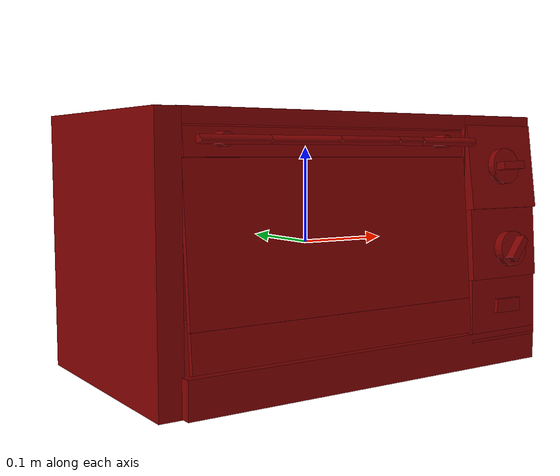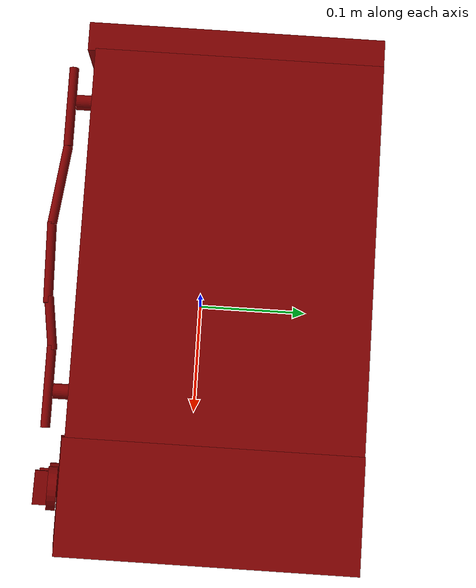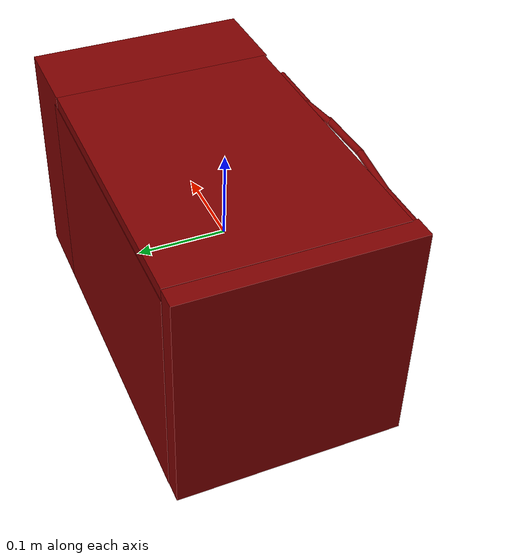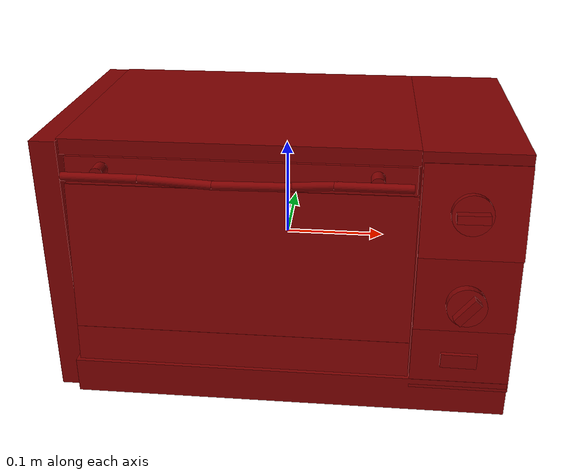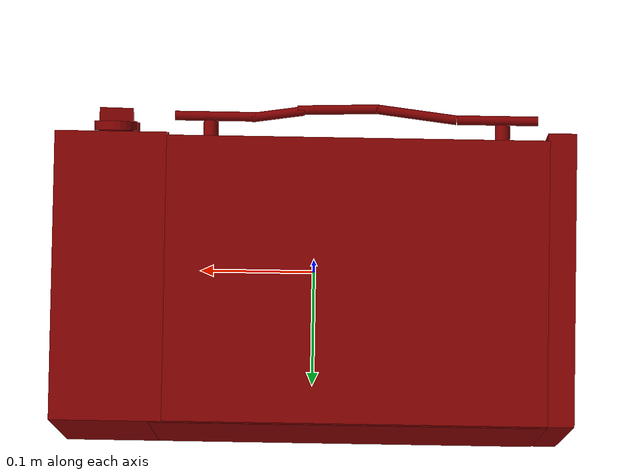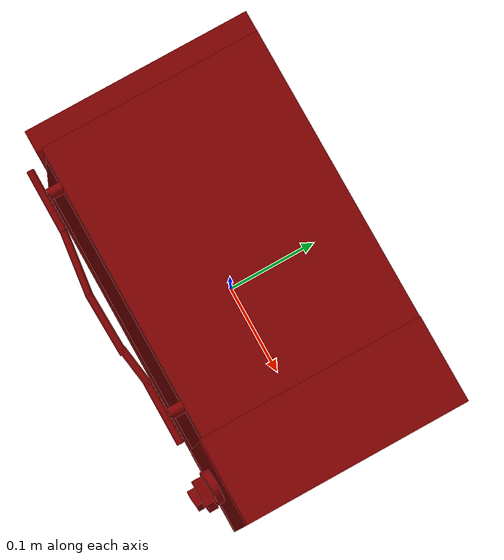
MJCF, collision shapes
<?xml version='1.0' encoding='UTF-8'?>
<mujoco model="model">
  <compiler angle="radian"/>
  <asset>
    <mesh file="visuals/Body001.obj" name="Body001_vis"/>
    <mesh file="visuals/Button001.obj" name="Button001_vis"/>
    <mesh file="visuals/Door001.obj" name="Door001_vis"/>
    <mesh file="visuals/Door001_Clear.obj" name="Door001_Clear_vis"/>
    <mesh file="visuals/Knob001.obj" name="Knob001_vis"/>
    <mesh file="visuals/Knob002.obj" name="Knob002_vis"/>
    <mesh file="visuals/Shelf001.obj" name="Shelf001_vis"/>
    <texture file="visuals/T_BC001.png" name="Body001_material" type="2d"/>
    <material name="Body001_material" rgba="1 1 1 1.0" texture="Body001_material" shininess="0.141421377658844" specular="0.7"/>
    <texture file="visuals/T_BC001.png" name="Button001_material" type="2d"/>
    <material name="Button001_material" rgba="1 1 1 1.0" texture="Button001_material" shininess="0.141421377658844" specular="0.3103448502657381"/>
    <texture file="visuals/T_BC001.png" name="Door001_material" type="2d"/>
    <material name="Door001_material" rgba="1 1 1 1.0" texture="Door001_material" shininess="0.141421377658844" specular="0.3103448502657381"/>
    <texture file="visuals/T_BC001.png" name="Door001_Clear_material" type="2d"/>
    <material name="Door001_Clear_material" rgba="1 1 1 0.800000011920929" texture="Door001_Clear_material" shininess="0.5" specular="0.3103448502657381"/>
    <texture file="visuals/T_BC001.png" name="Knob001_material" type="2d"/>
    <material name="Knob001_material" rgba="1 1 1 1.0" texture="Knob001_material" shininess="0.141421377658844" specular="0.3103448502657381"/>
    <texture file="visuals/T_BC001.png" name="Knob002_material" type="2d"/>
    <material name="Knob002_material" rgba="1 1 1 1.0" texture="Knob002_material" shininess="0.141421377658844" specular="0.3103448502657381"/>
    <texture file="visuals/T_BC001.png" name="Shelf001_material" type="2d"/>
    <material name="Shelf001_material" rgba="1 1 1 1.0" texture="Shelf001_material" shininess="0.141421377658844" specular="0.3103448502657381"/>
  </asset>
  <default>
    <default class="visual">
      <geom conaffinity="0" contype="0" group="1" type="mesh"/>
    </default>
    <default class="collision">
      <geom group="0" rgba="0.5 0 0 0.5"/>
    </default>
    <default class="spawn">
      <geom group="0" rgba="1 1 1 0.5" contype="0" conaffinity="0"/>
      <site group="0" rgba="1 1 1 0.5"/>
    </default>
    <default class="region">
      <geom group="1" conaffinity="0" contype="0" rgba="0 1 0 0"/>
    </default>
  </default>
  <worldbody>
    <body>
      <body name="object">
        <geom mesh="Body001_vis" type="mesh" solimp="0.998 0.998 0.001" solref="0.001 1" density="100" friction="0.95 0.3 0.1" class="visual" material="Body001_material"/>
        <geom class="collision" type="box" pos="-0.211815 0.016916 -0.000333" size="0.012318084016442299 0.12630335986614227 0.13237421214580536" quat="1.0 0.0 0.0 0.0"/>
        <geom class="collision" type="box" pos="0.176254 0.019283 0.000359" size="0.04807306453585625 0.1244635060429573 0.13252048194408417" quat="1.0 0.0 0.0 0.0"/>
        <geom class="collision" type="box" pos="-0.029959 0.020214 0.125367" size="0.17120349407196045 0.1230192482471466 0.007512243464589119" quat="1.0 0.0 0.0 0.0"/>
        <geom class="collision" type="box" pos="-0.031044 0.132364 -0.006656" size="0.17086303234100342 0.011382781900465488 0.12567463517189026" quat="1.0 0.0 0.0 0.0"/>
        <geom class="collision" type="box" pos="0.010635 0.010872 -0.113772" size="0.2128705382347107 0.13172350823879242 0.018143709748983383" quat="1.0 0.0 0.0 0.0"/>
        <geom class="collision" type="box" pos="0.177094 -0.110285 0.004721" size="0.04723312705755234 0.007223581895232201 0.044000741094350815" quat="0.9993194341659546 -0.03688732907176018 -0.0 0.0"/>
        <geom class="collision" type="box" pos="0.177039 -0.113559 -0.072148" size="0.047288112342357635 0.00625208904966712 0.03285124525427818" quat="0.9998456835746765 -0.017566410824656487 -0.0 0.0"/>
        <geom class="collision" type="box" pos="0.177074 -0.103929 0.078084" size="0.04725277051329613 0.008796773850917816 0.044000741094350815" quat="0.9974696040153503 -0.07109429687261581 -0.0 0.0"/>
        <body name="Button001">
          <joint axis="0.0 1.0 0.0" pos="0.174131 -0.126594 -0.067003" limited="true" name="Button001_joint" range="0.0 0.002" type="slide" damping="1" frictionloss="1" armature=".01" stiffness="0.05"/>
          <geom mesh="Button001_vis" type="mesh" solimp="0.998 0.998 0.001" solref="0.001 1" density="100" friction="0.95 0.3 0.1" class="visual" material="Button001_material"/>
          <geom class="collision" type="box" pos="0.174114 -0.127240 -0.067144" size="0.007137680891901255 0.002164183184504509 0.01704106479883194" quat="0.7104895710945129 -1.6860785771039e-12 -0.703707754611969 -9.455109761802305e-08"/>
        </body>
        <body name="Door001">
          <joint axis="1.0 0.0 0.0" pos="-0.035251 -0.118024 -0.097890" limited="true" name="Door001_joint" range="0.0 1.5707963267948966" type="hinge" damping="1" frictionloss="1" armature=".01" stiffness="0.05"/>
          <geom mesh="Door001_vis" type="mesh" solimp="0.998 0.998 0.001" solref="0.001 1" density="100" friction="0.95 0.3 0.1" class="visual" material="Door001_material"/>
          <geom class="collision" type="box" pos="-0.034727 -0.100901 0.102982" size="0.16091801226139069 0.002677108393982053 0.013145728968083858" quat="0.9991040229797363 -0.042321640998125076 -0.0 0.0"/>
          <geom class="collision" type="box" pos="-0.034727 -0.116024 -0.075207" size="0.16281473636627197 0.0026771086268126965 0.018106434494256973" quat="0.9991040229797363 -0.042321640998125076 -0.0 0.0"/>
          <geom class="collision" type="cylinder" pos="-0.156788 -0.123582 0.104953" size="0.004092741757631302 0.03496949374675751" quat="0.7071068286895752 -0.0 0.7071067690849304 0.0"/>
          <geom class="collision" type="cylinder" pos="0.090874 -0.110562 0.105399" size="0.006438995711505413 0.008417369797825813" quat="0.5 0.5 0.4999999701976776 -0.5"/>
          <geom class="collision" type="cylinder" pos="-0.161253 -0.110562 0.105399" size="0.006438995711505413 0.008417369797825813" quat="0.5 0.5 0.4999999701976776 -0.5"/>
          <geom class="collision" type="cylinder" pos="0.087272 -0.123582 0.104953" size="0.004092741757631302 0.03482336550951004" quat="0.7071068286895752 -0.0 0.7071067690849304 0.0"/>
          <geom class="collision" type="cylinder" pos="-0.086739 -0.127729 0.104953" size="0.004092741757631302 0.03496949374675751" quat="0.7057801485061646 0.04329412803053856 0.7057801485061646 -0.04329413175582886"/>
          <geom class="collision" type="cylinder" pos="-0.018764 -0.130987 0.104953" size="0.004092741757631302 0.03496949374675751" quat="0.7070282697677612 -0.010539108887314796 0.7070282101631165 0.010539108887314796"/>
          <geom class="collision" type="cylinder" pos="0.033366 -0.126100 0.104953" size="0.004092741757631302 0.02296733856201172" quat="0.7052480578422546 -0.05123709887266159 0.7052479982376099 0.05123709514737129"/>
          <body name="Door001_Clear">
            <geom mesh="Door001_Clear_vis" type="mesh" solimp="0.998 0.998 0.001" solref="0.001 1" density="100" friction="0.95 0.3 0.1" class="visual" material="Door001_Clear_material"/>
            <geom class="collision" type="box" pos="-0.034727 -0.108267 0.016189" size="0.16281473636627197 0.002677107695490122 0.07347836345434189" quat="0.9991040229797363 -0.042321640998125076 -0.0 0.0"/>
          </body>
        </body>
        <body name="Knob001">
          <joint axis="1.862645149230957e-08 0.9905868768692017 -0.13688477873802185" pos="0.174476 -0.121965 0.080298" limited="true" name="Knob001_joint" range="0.0 5.323254218582705" type="hinge" damping="0.05" armature="0.001"/>
          <geom mesh="Knob001_vis" type="mesh" solimp="0.998 0.998 0.001" solref="0.001 1" density="100" friction="0.95 0.3 0.1" class="visual" material="Knob001_material"/>
          <geom class="collision" type="cylinder" pos="0.174450 -0.117424 0.079939" size="0.018798578530550003 0.0039370181038975716" quat="0.750392496585846 0.6609925031661987 0.0 0.0"/>
          <geom class="collision" type="box" pos="0.174227 -0.126873 0.080823" size="0.003927817568182945 0.00618156511336565 0.014596188440918922" quat="0.6980964541435242 -0.053591083735227585 -0.7126851677894592 0.04323406144976616"/>
        </body>
        <body name="Knob002">
          <joint axis="0.00022061914205551147 0.9939551949501038 -0.10978568345308304" pos="0.175572 -0.131671 -0.006376" limited="true" name="Knob002_joint" range="0.0 5.497787143782138" type="hinge" damping="0.05" armature="0.001" springref="-0.1"/>
          <geom mesh="Knob002_vis" type="mesh" solimp="0.998 0.998 0.001" solref="0.001 1" density="100" friction="0.95 0.3 0.1" class="visual" material="Knob002_material"/>
          <geom class="collision" type="cylinder" pos="0.176086 -0.127848 -0.006906" size="0.018475616350769997 0.004937620833516121" quat="0.7443777322769165 0.6677308082580566 -0.0008817413472570479 0.006049970630556345"/>
          <geom class="collision" type="box" pos="0.175723 -0.137003 -0.006415" size="0.004102236125618219 0.005853461567312479 0.01399307046085596" quat="0.34811753034591675 -0.0016535589238628745 -0.9367157816886902 0.037080712616443634"/>
        </body>
        <body name="Shelf001">
          <joint axis="0.0 -1.0 0.0" pos="-0.035660 0.015986 0.019686" limited="true" name="Shelf001_joint" range="0.0 0.2" type="slide" damping="1" frictionloss="1" armature=".01" stiffness="0.05"/>
          <geom mesh="Shelf001_vis" type="mesh" solimp="0.998 0.998 0.001" solref="0.001 1" density="100" friction="0.95 0.3 0.1" class="visual" material="Shelf001_material"/>
          <geom class="collision" type="box" pos="-0.037492 0.012118 0.021377" size="0.15941910445690155 0.10069171339273453 0.002166612772271037" quat="1.0 0.0 0.0 0.0"/>
        </body>
        <geom class="region" name="reg_main" type="box" pos="0.0 0.011165000000000008 0.0" size="0.225633 0.132582 0.132879"/>
        <geom class="region" name="reg_int" type="box" pos="-0.036444000000000004 -0.0077464999999999964 0.0107895" size="0.164439 0.10759250000000001 0.10848949999999999"/>
      </body>
    </body>
  </worldbody>
  <actuator>
    <motor name="Button001_joint_actuator" joint="Button001_joint" gear="0.5"/>
    <motor name="Door001_joint_actuator" joint="Door001_joint" gear="50"/>
    <motor name="Knob001_joint_actuator" joint="Knob001_joint" gear="50"/>
    <motor name="Knob002_joint_actuator" joint="Knob002_joint" gear="50"/>
    <motor name="Shelf001_joint_actuator" joint="Shelf001_joint" gear="50"/>
  </actuator>
</mujoco>
